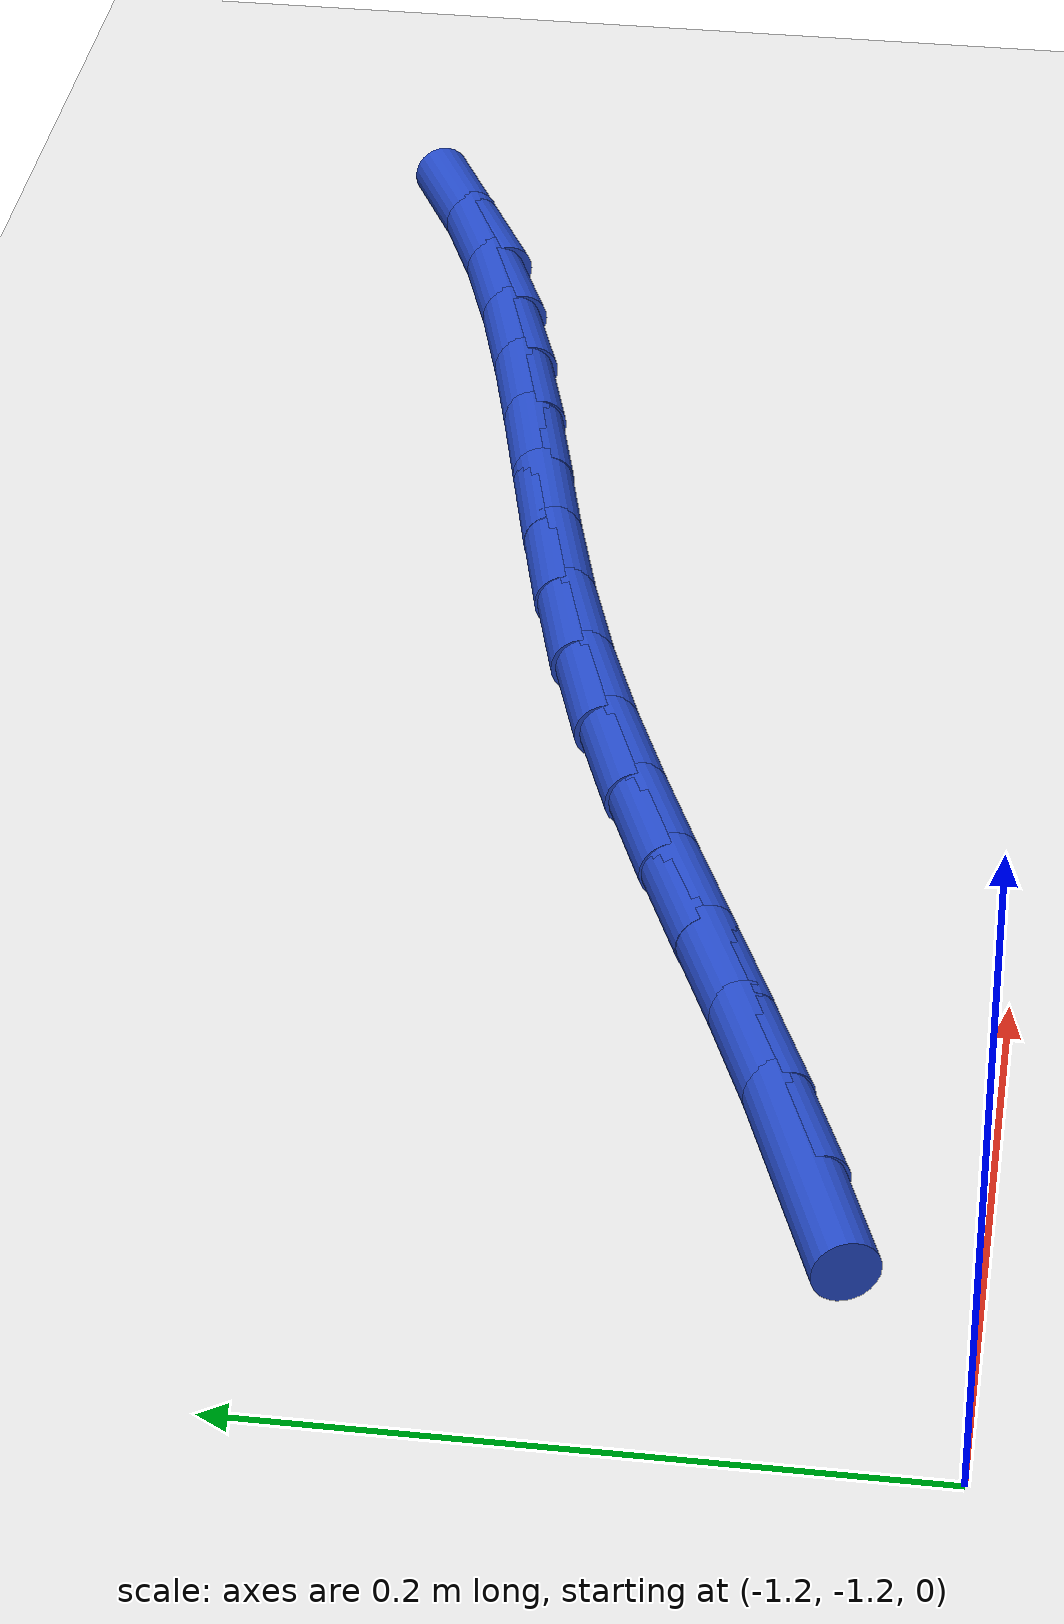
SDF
<sdf version="1.6">
 <world name="default">
  <model name="ground_plane">
   <static>1</static>
   <link name="link">
    <collision name="collision">
     <geometry><plane><normal>0 0 1</normal><size>100 100</size></plane></geometry>
     <surface><friction><ode><mu>100</mu><mu2>50</mu2></ode></friction></surface>
    </collision>
    <visual name="visual">
     <cast_shadows>0</cast_shadows>
     <geometry><plane><normal>0 0 1</normal><size>100 100</size></plane></geometry>
     <material>
      <script><uri>file://media/materials/scripts/gazebo.material</uri><name>Gazebo/WhiteGlow</name></script>
     </material>
    </visual>
   </link>
  </model>
  <model name="line">
   <link name="link_143">
    <pose>-1.0953761603782668 -1.150177969708936 0.01 0 1.57 0.34127557897628985</pose>
    <collision name="collision">
     <geometry><cylinder><radius>0.01</radius><length>0.08</length></cylinder></geometry>
    </collision>
    <visual name="visual">
     <material>
      <script><name>Gazebo/Blue</name><uri>file://media/materials/scripts/gazebo.material</uri></script>
     </material>
     <geometry><cylinder><radius>0.01</radius><length>0.08</length></cylinder></geometry>
    </visual>
   </link>
   <link name="link_144">
    <pose>-1.06081329437033 -1.1379021826266897 0.01 0 1.57 0.3708787092057038</pose>
    <collision name="collision">
     <geometry><cylinder><radius>0.01</radius><length>0.08</length></cylinder></geometry>
    </collision>
    <visual name="visual">
     <material>
      <script><name>Gazebo/Blue</name><uri>file://media/materials/scripts/gazebo.material</uri></script>
     </material>
     <geometry><cylinder><radius>0.01</radius><length>0.08</length></cylinder></geometry>
    </visual>
   </link>
   <link name="link_145">
    <pose>-1.0263716658070627 -1.1245087147471213 0.01 0 1.57 0.3878450278757963</pose>
    <collision name="collision">
     <geometry><cylinder><radius>0.01</radius><length>0.08</length></cylinder></geometry>
    </collision>
    <visual name="visual">
     <material>
      <script><name>Gazebo/Blue</name><uri>file://media/materials/scripts/gazebo.material</uri></script>
     </material>
     <geometry><cylinder><radius>0.01</radius><length>0.08</length></cylinder></geometry>
    </visual>
   </link>
   <link name="link_146">
    <pose>-0.9919555516745971 -1.1104484225471154 0.01 0 1.57 0.3924901065719383</pose>
    <collision name="collision">
     <geometry><cylinder><radius>0.01</radius><length>0.08</length></cylinder></geometry>
    </collision>
    <visual name="visual">
     <material>
      <script><name>Gazebo/Blue</name><uri>file://media/materials/scripts/gazebo.material</uri></script>
     </material>
     <geometry><cylinder><radius>0.01</radius><length>0.08</length></cylinder></geometry>
    </visual>
   </link>
   <link name="link_147">
    <pose>-0.9574692289590675 -1.0961721625035574 0.01 0 1.57 0.38498797239507987</pose>
    <collision name="collision">
     <geometry><cylinder><radius>0.01</radius><length>0.08</length></cylinder></geometry>
    </collision>
    <visual name="visual">
     <material>
      <script><name>Gazebo/Blue</name><uri>file://media/materials/scripts/gazebo.material</uri></script>
     </material>
     <geometry><cylinder><radius>0.01</radius><length>0.08</length></cylinder></geometry>
    </visual>
   </link>
   <link name="link_148">
    <pose>-0.9228169746466073 -1.0821307910933333 0.01 0 1.57 0.3653561340006187</pose>
    <collision name="collision">
     <geometry><cylinder><radius>0.01</radius><length>0.08</length></cylinder></geometry>
    </collision>
    <visual name="visual">
     <material>
      <script><name>Gazebo/Blue</name><uri>file://media/materials/scripts/gazebo.material</uri></script>
     </material>
     <geometry><cylinder><radius>0.01</radius><length>0.08</length></cylinder></geometry>
    </visual>
   </link>
   <link name="link_149">
    <pose>-0.8879030657233504 -1.0687751647933286 0.01 0 1.57 0.3334907057071335</pose>
    <collision name="collision">
     <geometry><cylinder><radius>0.01</radius><length>0.08</length></cylinder></geometry>
    </collision>
    <visual name="visual">
     <material>
      <script><name>Gazebo/Blue</name><uri>file://media/materials/scripts/gazebo.material</uri></script>
     </material>
     <geometry><cylinder><radius>0.01</radius><length>0.08</length></cylinder></geometry>
    </visual>
   </link>
   <link name="link_150">
    <pose>-0.8526317791754303 -1.0565561400804286 0.01 0 1.57 0.2906840876658686</pose>
    <collision name="collision">
     <geometry><cylinder><radius>0.01</radius><length>0.08</length></cylinder></geometry>
    </collision>
    <visual name="visual">
     <material>
      <script><name>Gazebo/Blue</name><uri>file://media/materials/scripts/gazebo.material</uri></script>
     </material>
     <geometry><cylinder><radius>0.01</radius><length>0.08</length></cylinder></geometry>
    </visual>
   </link>
   <link name="link_151">
    <pose>-0.8169236846579027 -1.0458737799187714 0.01 0 1.57 0.2532497011362644</pose>
    <collision name="collision">
     <geometry><cylinder><radius>0.01</radius><length>0.08</length></cylinder></geometry>
    </collision>
    <visual name="visual">
     <material>
      <script><name>Gazebo/Blue</name><uri>file://media/materials/scripts/gazebo.material</uri></script>
     </material>
     <geometry><cylinder><radius>0.01</radius><length>0.08</length></cylinder></geometry>
    </visual>
   </link>
   <link name="link_152">
    <pose>-0.7808857813854321 -1.0365469403347392 0.01 0 1.57 0.23159189331269348</pose>
    <collision name="collision">
     <geometry><cylinder><radius>0.01</radius><length>0.08</length></cylinder></geometry>
    </collision>
    <visual name="visual">
     <material>
      <script><name>Gazebo/Blue</name><uri>file://media/materials/scripts/gazebo.material</uri></script>
     </material>
     <geometry><cylinder><radius>0.01</radius><length>0.08</length></cylinder></geometry>
    </visual>
   </link>
   <link name="link_153">
    <pose>-0.744743949030491 -1.0280238593744495 0.01 0 1.57 0.22588214181267177</pose>
    <collision name="collision">
     <geometry><cylinder><radius>0.01</radius><length>0.08</length></cylinder></geometry>
    </collision>
    <visual name="visual">
     <material>
      <script><name>Gazebo/Blue</name><uri>file://media/materials/scripts/gazebo.material</uri></script>
     </material>
     <geometry><cylinder><radius>0.01</radius><length>0.08</length></cylinder></geometry>
    </visual>
   </link>
   <link name="link_154">
    <pose>-0.7087259867918282 -1.0197467908292146 0.01 0 1.57 0.23631078685077</pose>
    <collision name="collision">
     <geometry><cylinder><radius>0.01</radius><length>0.08</length></cylinder></geometry>
    </collision>
    <visual name="visual">
     <material>
      <script><name>Gazebo/Blue</name><uri>file://media/materials/scripts/gazebo.material</uri></script>
     </material>
     <geometry><cylinder><radius>0.01</radius><length>0.08</length></cylinder></geometry>
    </visual>
   </link>
   <link name="link_155">
    <pose>-0.6730596938681918 -1.0111579884903468 0.01 0 1.57 0.26330907083715727</pose>
    <collision name="collision">
     <geometry><cylinder><radius>0.01</radius><length>0.08</length></cylinder></geometry>
    </collision>
    <visual name="visual">
     <material>
      <script><name>Gazebo/Blue</name><uri>file://media/materials/scripts/gazebo.material</uri></script>
     </material>
     <geometry><cylinder><radius>0.01</radius><length>0.08</length></cylinder></geometry>
    </visual>
   </link>
   <link name="link_156">
    <pose>-0.6379728694583304 -1.0016997061491593 0.01 0 1.57 0.30747987879655914</pose>
    <collision name="collision">
     <geometry><cylinder><radius>0.01</radius><length>0.08</length></cylinder></geometry>
    </collision>
    <visual name="visual">
     <material>
      <script><name>Gazebo/Blue</name><uri>file://media/materials/scripts/gazebo.material</uri></script>
     </material>
     <geometry><cylinder><radius>0.01</radius><length>0.08</length></cylinder></geometry>
    </visual>
   </link>
   <link name="link_157">
    <pose>-0.6036933127609919 -0.9908141975969634 0.01 0 1.57 0.3693767223327903</pose>
    <collision name="collision">
     <geometry><cylinder><radius>0.01</radius><length>0.08</length></cylinder></geometry>
    </collision>
    <visual name="visual">
     <material>
      <script><name>Gazebo/Blue</name><uri>file://media/materials/scripts/gazebo.material</uri></script>
     </material>
     <geometry><cylinder><radius>0.01</radius><length>0.08</length></cylinder></geometry>
    </visual>
   </link>
   <link name="link_158">
    <pose>-0.5704488229749249 -0.9779437166250723 0.01 0 1.57 0.4463722513272084</pose>
    <collision name="collision">
     <geometry><cylinder><radius>0.01</radius><length>0.08</length></cylinder></geometry>
    </collision>
    <visual name="visual">
     <material>
      <script><name>Gazebo/Blue</name><uri>file://media/materials/scripts/gazebo.material</uri></script>
     </material>
     <geometry><cylinder><radius>0.01</radius><length>0.08</length></cylinder></geometry>
    </visual>
   </link>
  </model>
 </world>
</sdf>
